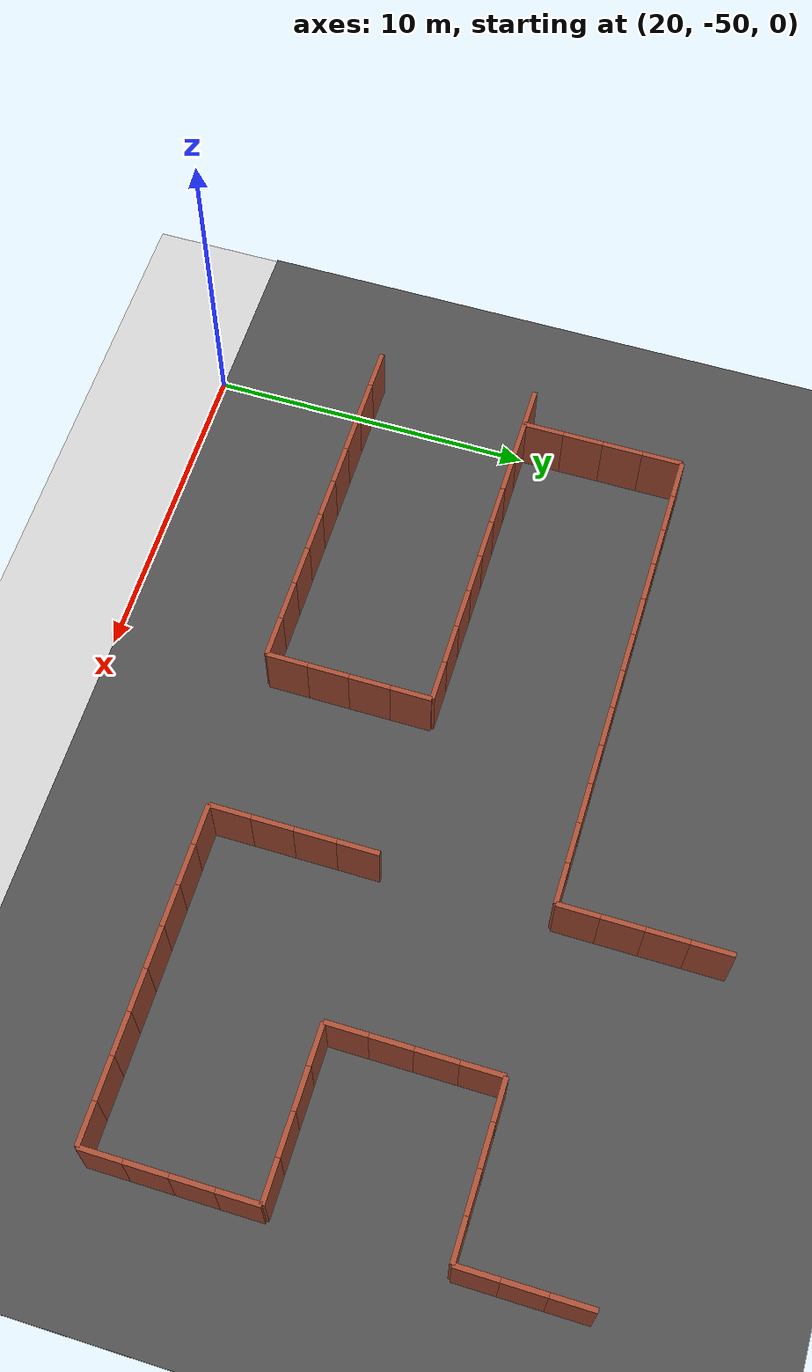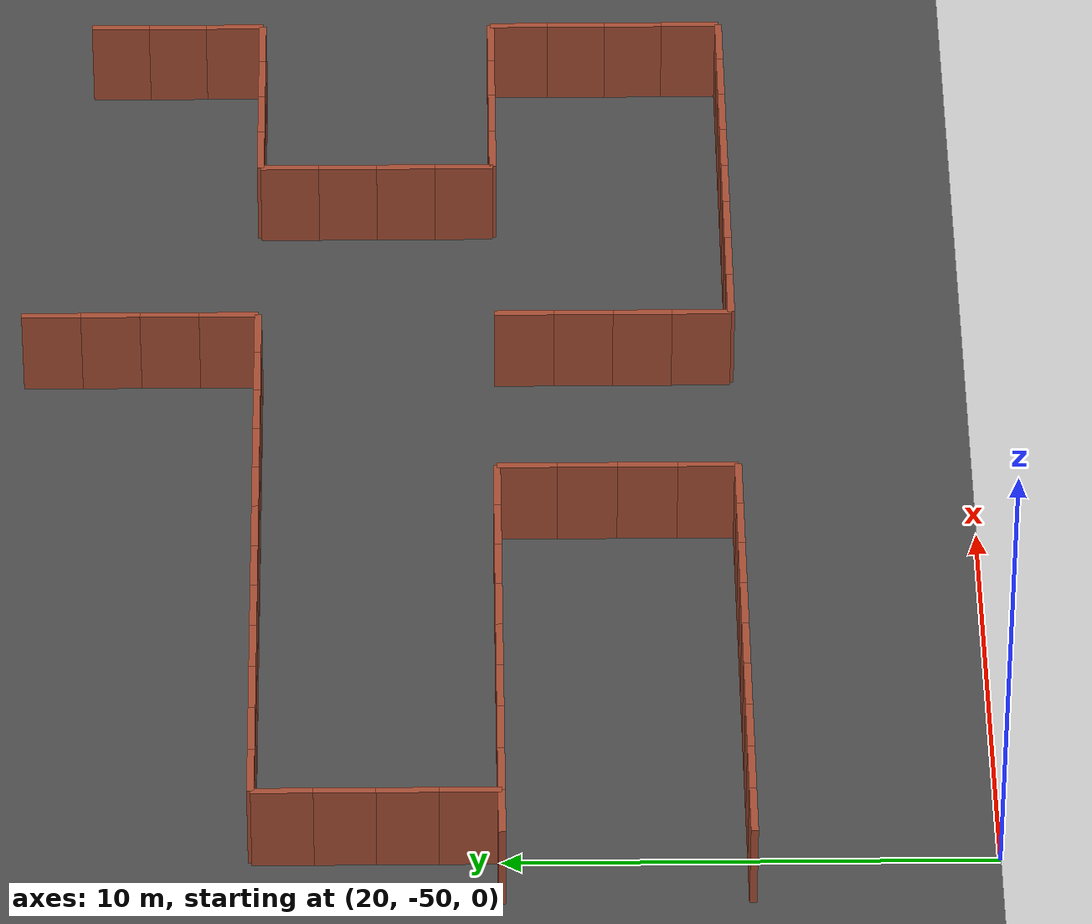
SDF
<sdf version="1.6">
 <world name="default">
  <model name="ground_plane">
   <static>1</static>
   <link name="link">
    <collision name="collision">
     <geometry><plane><normal>0 0 1</normal><size>100 100</size></plane></geometry>
     <surface><friction><ode><mu>100</mu><mu2>50</mu2></ode></friction></surface>
    </collision>
    <visual name="visual">
     <cast_shadows>0</cast_shadows>
     <geometry><plane><normal>0 0 1</normal><size>100 100</size></plane></geometry>
     <material>
      <script><uri>file://media/materials/scripts/gazebo.material</uri><name>Gazebo/Grey</name></script>
     </material>
    </visual>
   </link>
  </model>
  <model name="asphalt_plane">
   <static>1</static>
   <link name="link">
    <collision name="collision"><geometry><box><size>100 100 0.1</size></box></geometry></collision>
    <visual name="visual">
     <cast_shadows>0</cast_shadows>
     <geometry><box><size>100 100 0.1</size></box></geometry>
     <material>
      <script>
       <uri>model://asphalt_plane/materials/scripts</uri>
       <uri>model://asphalt_plane/materials/textures</uri>
       <name>vrc/asphalt</name>
      </script>
     </material>
    </visual>
   </link>
  </model>
  <model name="brick_wall_28_2_vertical1">
   <pose>20.625 -45 0 0 -0 0</pose>
   <link name="Wall_0">
    <collision name="Wall_0_Collision">
     <geometry><box><size>1.25 0.15 2</size></box></geometry>
     <pose>0 0 1 0 -0 0</pose>
    </collision>
    <visual name="Wall_0_Visual">
     <pose>0 0 1 0 -0 0</pose>
     <geometry><box><size>1.25 0.15 2</size></box></geometry>
     <material>
      <script><uri>file://media/materials/scripts/gazebo.material</uri><name>Gazebo/Bricks</name></script>
      <ambient>1 1 1 1</ambient>
     </material>
     <meta><layer>0</layer></meta>
    </visual>
   </link>
   <static>1</static>
  </model>
  <model name="brick_wall_28_2_vertical2">
   <pose>19.375 -45 0 0 -0 0</pose>
   <link name="Wall_0">
    <collision name="Wall_0_Collision">
     <geometry><box><size>1.25 0.15 2</size></box></geometry>
     <pose>0 0 1 0 -0 0</pose>
    </collision>
    <visual name="Wall_0_Visual">
     <pose>0 0 1 0 -0 0</pose>
     <geometry><box><size>1.25 0.15 2</size></box></geometry>
     <material>
      <script><uri>file://media/materials/scripts/gazebo.material</uri><name>Gazebo/Bricks</name></script>
      <ambient>1 1 1 1</ambient>
     </material>
     <meta><layer>0</layer></meta>
    </visual>
   </link>
   <static>1</static>
  </model>
  <model name="brick_wall_28_4_vertical1">
   <pose>20.625 -40 0 0 -0 0</pose>
   <link name="Wall_0">
    <collision name="Wall_0_Collision">
     <geometry><box><size>1.25 0.15 2</size></box></geometry>
     <pose>0 0 1 0 -0 0</pose>
    </collision>
    <visual name="Wall_0_Visual">
     <pose>0 0 1 0 -0 0</pose>
     <geometry><box><size>1.25 0.15 2</size></box></geometry>
     <material>
      <script><uri>file://media/materials/scripts/gazebo.material</uri><name>Gazebo/Bricks</name></script>
      <ambient>1 1 1 1</ambient>
     </material>
     <meta><layer>0</layer></meta>
    </visual>
   </link>
   <static>1</static>
  </model>
  <model name="brick_wall_28_4_vertical2">
   <pose>19.375 -40 0 0 -0 0</pose>
   <link name="Wall_0">
    <collision name="Wall_0_Collision">
     <geometry><box><size>1.25 0.15 2</size></box></geometry>
     <pose>0 0 1 0 -0 0</pose>
    </collision>
    <visual name="Wall_0_Visual">
     <pose>0 0 1 0 -0 0</pose>
     <geometry><box><size>1.25 0.15 2</size></box></geometry>
     <material>
      <script><uri>file://media/materials/scripts/gazebo.material</uri><name>Gazebo/Bricks</name></script>
      <ambient>1 1 1 1</ambient>
     </material>
     <meta><layer>0</layer></meta>
    </visual>
   </link>
   <static>1</static>
  </model>
  <model name="brick_wall_28_4_horizontal1">
   <pose>20 -39.375 0 0 -0 1.5708</pose>
   <link name="Wall_0">
    <collision name="Wall_0_Collision">
     <geometry><box><size>1.25 0.15 2</size></box></geometry>
     <pose>0 0 1 0 -0 0</pose>
    </collision>
    <visual name="Wall_0_Visual">
     <pose>0 0 1 0 -0 0</pose>
     <geometry><box><size>1.25 0.15 2</size></box></geometry>
     <material>
      <script><uri>file://media/materials/scripts/gazebo.material</uri><name>Gazebo/Bricks</name></script>
      <ambient>1 1 1 1</ambient>
     </material>
     <meta><layer>0</layer></meta>
    </visual>
   </link>
   <static>1</static>
  </model>
  <model name="brick_wall_28_5_horizontal1">
   <pose>20 -36.875 0 0 -0 1.5708</pose>
   <link name="Wall_0">
    <collision name="Wall_0_Collision">
     <geometry><box><size>1.25 0.15 2</size></box></geometry>
     <pose>0 0 1 0 -0 0</pose>
    </collision>
    <visual name="Wall_0_Visual">
     <pose>0 0 1 0 -0 0</pose>
     <geometry><box><size>1.25 0.15 2</size></box></geometry>
     <material>
      <script><uri>file://media/materials/scripts/gazebo.material</uri><name>Gazebo/Bricks</name></script>
      <ambient>1 1 1 1</ambient>
     </material>
     <meta><layer>0</layer></meta>
    </visual>
   </link>
   <static>1</static>
  </model>
  <model name="brick_wall_28_5_horizontal2">
   <pose>20 -38.125 0 0 -0 1.5708</pose>
   <link name="Wall_0">
    <collision name="Wall_0_Collision">
     <geometry><box><size>1.25 0.15 2</size></box></geometry>
     <pose>0 0 1 0 -0 0</pose>
    </collision>
    <visual name="Wall_0_Visual">
     <pose>0 0 1 0 -0 0</pose>
     <geometry><box><size>1.25 0.15 2</size></box></geometry>
     <material>
      <script><uri>file://media/materials/scripts/gazebo.material</uri><name>Gazebo/Bricks</name></script>
      <ambient>1 1 1 1</ambient>
     </material>
     <meta><layer>0</layer></meta>
    </visual>
   </link>
   <static>1</static>
  </model>
  <model name="brick_wall_28_6_vertical1">
   <pose>20.625 -35 0 0 -0 0</pose>
   <link name="Wall_0">
    <collision name="Wall_0_Collision">
     <geometry><box><size>1.25 0.15 2</size></box></geometry>
     <pose>0 0 1 0 -0 0</pose>
    </collision>
    <visual name="Wall_0_Visual">
     <pose>0 0 1 0 -0 0</pose>
     <geometry><box><size>1.25 0.15 2</size></box></geometry>
     <material>
      <script><uri>file://media/materials/scripts/gazebo.material</uri><name>Gazebo/Bricks</name></script>
      <ambient>1 1 1 1</ambient>
     </material>
     <meta><layer>0</layer></meta>
    </visual>
   </link>
   <static>1</static>
  </model>
  <model name="brick_wall_28_6_horizontal2">
   <pose>20 -35.625 0 0 -0 1.5708</pose>
   <link name="Wall_0">
    <collision name="Wall_0_Collision">
     <geometry><box><size>1.25 0.15 2</size></box></geometry>
     <pose>0 0 1 0 -0 0</pose>
    </collision>
    <visual name="Wall_0_Visual">
     <pose>0 0 1 0 -0 0</pose>
     <geometry><box><size>1.25 0.15 2</size></box></geometry>
     <material>
      <script><uri>file://media/materials/scripts/gazebo.material</uri><name>Gazebo/Bricks</name></script>
      <ambient>1 1 1 1</ambient>
     </material>
     <meta><layer>0</layer></meta>
    </visual>
   </link>
   <static>1</static>
  </model>
  <model name="brick_wall_29_2_vertical1">
   <pose>23.125 -45 0 0 -0 0</pose>
   <link name="Wall_0">
    <collision name="Wall_0_Collision">
     <geometry><box><size>1.25 0.15 2</size></box></geometry>
     <pose>0 0 1 0 -0 0</pose>
    </collision>
    <visual name="Wall_0_Visual">
     <pose>0 0 1 0 -0 0</pose>
     <geometry><box><size>1.25 0.15 2</size></box></geometry>
     <material>
      <script><uri>file://media/materials/scripts/gazebo.material</uri><name>Gazebo/Bricks</name></script>
      <ambient>1 1 1 1</ambient>
     </material>
     <meta><layer>0</layer></meta>
    </visual>
   </link>
   <static>1</static>
  </model>
  <model name="brick_wall_29_2_vertical2">
   <pose>21.875 -45 0 0 -0 0</pose>
   <link name="Wall_0">
    <collision name="Wall_0_Collision">
     <geometry><box><size>1.25 0.15 2</size></box></geometry>
     <pose>0 0 1 0 -0 0</pose>
    </collision>
    <visual name="Wall_0_Visual">
     <pose>0 0 1 0 -0 0</pose>
     <geometry><box><size>1.25 0.15 2</size></box></geometry>
     <material>
      <script><uri>file://media/materials/scripts/gazebo.material</uri><name>Gazebo/Bricks</name></script>
      <ambient>1 1 1 1</ambient>
     </material>
     <meta><layer>0</layer></meta>
    </visual>
   </link>
   <static>1</static>
  </model>
  <model name="brick_wall_29_4_vertical1">
   <pose>23.125 -40 0 0 -0 0</pose>
   <link name="Wall_0">
    <collision name="Wall_0_Collision">
     <geometry><box><size>1.25 0.15 2</size></box></geometry>
     <pose>0 0 1 0 -0 0</pose>
    </collision>
    <visual name="Wall_0_Visual">
     <pose>0 0 1 0 -0 0</pose>
     <geometry><box><size>1.25 0.15 2</size></box></geometry>
     <material>
      <script><uri>file://media/materials/scripts/gazebo.material</uri><name>Gazebo/Bricks</name></script>
      <ambient>1 1 1 1</ambient>
     </material>
     <meta><layer>0</layer></meta>
    </visual>
   </link>
   <static>1</static>
  </model>
  <model name="brick_wall_29_4_vertical2">
   <pose>21.875 -40 0 0 -0 0</pose>
   <link name="Wall_0">
    <collision name="Wall_0_Collision">
     <geometry><box><size>1.25 0.15 2</size></box></geometry>
     <pose>0 0 1 0 -0 0</pose>
    </collision>
    <visual name="Wall_0_Visual">
     <pose>0 0 1 0 -0 0</pose>
     <geometry><box><size>1.25 0.15 2</size></box></geometry>
     <material>
      <script><uri>file://media/materials/scripts/gazebo.material</uri><name>Gazebo/Bricks</name></script>
      <ambient>1 1 1 1</ambient>
     </material>
     <meta><layer>0</layer></meta>
    </visual>
   </link>
   <static>1</static>
  </model>
  <model name="brick_wall_29_6_vertical1">
   <pose>23.125 -35 0 0 -0 0</pose>
   <link name="Wall_0">
    <collision name="Wall_0_Collision">
     <geometry><box><size>1.25 0.15 2</size></box></geometry>
     <pose>0 0 1 0 -0 0</pose>
    </collision>
    <visual name="Wall_0_Visual">
     <pose>0 0 1 0 -0 0</pose>
     <geometry><box><size>1.25 0.15 2</size></box></geometry>
     <material>
      <script><uri>file://media/materials/scripts/gazebo.material</uri><name>Gazebo/Bricks</name></script>
      <ambient>1 1 1 1</ambient>
     </material>
     <meta><layer>0</layer></meta>
    </visual>
   </link>
   <static>1</static>
  </model>
  <model name="brick_wall_29_6_vertical2">
   <pose>21.875 -35 0 0 -0 0</pose>
   <link name="Wall_0">
    <collision name="Wall_0_Collision">
     <geometry><box><size>1.25 0.15 2</size></box></geometry>
     <pose>0 0 1 0 -0 0</pose>
    </collision>
    <visual name="Wall_0_Visual">
     <pose>0 0 1 0 -0 0</pose>
     <geometry><box><size>1.25 0.15 2</size></box></geometry>
     <material>
      <script><uri>file://media/materials/scripts/gazebo.material</uri><name>Gazebo/Bricks</name></script>
      <ambient>1 1 1 1</ambient>
     </material>
     <meta><layer>0</layer></meta>
    </visual>
   </link>
   <static>1</static>
  </model>
  <model name="brick_wall_30_2_vertical1">
   <pose>25.625 -45 0 0 -0 0</pose>
   <link name="Wall_0">
    <collision name="Wall_0_Collision">
     <geometry><box><size>1.25 0.15 2</size></box></geometry>
     <pose>0 0 1 0 -0 0</pose>
    </collision>
    <visual name="Wall_0_Visual">
     <pose>0 0 1 0 -0 0</pose>
     <geometry><box><size>1.25 0.15 2</size></box></geometry>
     <material>
      <script><uri>file://media/materials/scripts/gazebo.material</uri><name>Gazebo/Bricks</name></script>
      <ambient>1 1 1 1</ambient>
     </material>
     <meta><layer>0</layer></meta>
    </visual>
   </link>
   <static>1</static>
  </model>
  <model name="brick_wall_30_2_vertical2">
   <pose>24.375 -45 0 0 -0 0</pose>
   <link name="Wall_0">
    <collision name="Wall_0_Collision">
     <geometry><box><size>1.25 0.15 2</size></box></geometry>
     <pose>0 0 1 0 -0 0</pose>
    </collision>
    <visual name="Wall_0_Visual">
     <pose>0 0 1 0 -0 0</pose>
     <geometry><box><size>1.25 0.15 2</size></box></geometry>
     <material>
      <script><uri>file://media/materials/scripts/gazebo.material</uri><name>Gazebo/Bricks</name></script>
      <ambient>1 1 1 1</ambient>
     </material>
     <meta><layer>0</layer></meta>
    </visual>
   </link>
   <static>1</static>
  </model>
  <model name="brick_wall_30_4_vertical1">
   <pose>25.625 -40 0 0 -0 0</pose>
   <link name="Wall_0">
    <collision name="Wall_0_Collision">
     <geometry><box><size>1.25 0.15 2</size></box></geometry>
     <pose>0 0 1 0 -0 0</pose>
    </collision>
    <visual name="Wall_0_Visual">
     <pose>0 0 1 0 -0 0</pose>
     <geometry><box><size>1.25 0.15 2</size></box></geometry>
     <material>
      <script><uri>file://media/materials/scripts/gazebo.material</uri><name>Gazebo/Bricks</name></script>
      <ambient>1 1 1 1</ambient>
     </material>
     <meta><layer>0</layer></meta>
    </visual>
   </link>
   <static>1</static>
  </model>
  <model name="brick_wall_30_4_vertical2">
   <pose>24.375 -40 0 0 -0 0</pose>
   <link name="Wall_0">
    <collision name="Wall_0_Collision">
     <geometry><box><size>1.25 0.15 2</size></box></geometry>
     <pose>0 0 1 0 -0 0</pose>
    </collision>
    <visual name="Wall_0_Visual">
     <pose>0 0 1 0 -0 0</pose>
     <geometry><box><size>1.25 0.15 2</size></box></geometry>
     <material>
      <script><uri>file://media/materials/scripts/gazebo.material</uri><name>Gazebo/Bricks</name></script>
      <ambient>1 1 1 1</ambient>
     </material>
     <meta><layer>0</layer></meta>
    </visual>
   </link>
   <static>1</static>
  </model>
  <model name="brick_wall_30_6_vertical1">
   <pose>25.625 -35 0 0 -0 0</pose>
   <link name="Wall_0">
    <collision name="Wall_0_Collision">
     <geometry><box><size>1.25 0.15 2</size></box></geometry>
     <pose>0 0 1 0 -0 0</pose>
    </collision>
    <visual name="Wall_0_Visual">
     <pose>0 0 1 0 -0 0</pose>
     <geometry><box><size>1.25 0.15 2</size></box></geometry>
     <material>
      <script><uri>file://media/materials/scripts/gazebo.material</uri><name>Gazebo/Bricks</name></script>
      <ambient>1 1 1 1</ambient>
     </material>
     <meta><layer>0</layer></meta>
    </visual>
   </link>
   <static>1</static>
  </model>
  <model name="brick_wall_30_6_vertical2">
   <pose>24.375 -35 0 0 -0 0</pose>
   <link name="Wall_0">
    <collision name="Wall_0_Collision">
     <geometry><box><size>1.25 0.15 2</size></box></geometry>
     <pose>0 0 1 0 -0 0</pose>
    </collision>
    <visual name="Wall_0_Visual">
     <pose>0 0 1 0 -0 0</pose>
     <geometry><box><size>1.25 0.15 2</size></box></geometry>
     <material>
      <script><uri>file://media/materials/scripts/gazebo.material</uri><name>Gazebo/Bricks</name></script>
      <ambient>1 1 1 1</ambient>
     </material>
     <meta><layer>0</layer></meta>
    </visual>
   </link>
   <static>1</static>
  </model>
  <model name="brick_wall_31_2_vertical1">
   <pose>28.125 -45 0 0 -0 0</pose>
   <link name="Wall_0">
    <collision name="Wall_0_Collision">
     <geometry><box><size>1.25 0.15 2</size></box></geometry>
     <pose>0 0 1 0 -0 0</pose>
    </collision>
    <visual name="Wall_0_Visual">
     <pose>0 0 1 0 -0 0</pose>
     <geometry><box><size>1.25 0.15 2</size></box></geometry>
     <material>
      <script><uri>file://media/materials/scripts/gazebo.material</uri><name>Gazebo/Bricks</name></script>
      <ambient>1 1 1 1</ambient>
     </material>
     <meta><layer>0</layer></meta>
    </visual>
   </link>
   <static>1</static>
  </model>
  <model name="brick_wall_31_2_vertical2">
   <pose>26.875 -45 0 0 -0 0</pose>
   <link name="Wall_0">
    <collision name="Wall_0_Collision">
     <geometry><box><size>1.25 0.15 2</size></box></geometry>
     <pose>0 0 1 0 -0 0</pose>
    </collision>
    <visual name="Wall_0_Visual">
     <pose>0 0 1 0 -0 0</pose>
     <geometry><box><size>1.25 0.15 2</size></box></geometry>
     <material>
      <script><uri>file://media/materials/scripts/gazebo.material</uri><name>Gazebo/Bricks</name></script>
      <ambient>1 1 1 1</ambient>
     </material>
     <meta><layer>0</layer></meta>
    </visual>
   </link>
   <static>1</static>
  </model>
  <model name="brick_wall_31_4_vertical1">
   <pose>28.125 -40 0 0 -0 0</pose>
   <link name="Wall_0">
    <collision name="Wall_0_Collision">
     <geometry><box><size>1.25 0.15 2</size></box></geometry>
     <pose>0 0 1 0 -0 0</pose>
    </collision>
    <visual name="Wall_0_Visual">
     <pose>0 0 1 0 -0 0</pose>
     <geometry><box><size>1.25 0.15 2</size></box></geometry>
     <material>
      <script><uri>file://media/materials/scripts/gazebo.material</uri><name>Gazebo/Bricks</name></script>
      <ambient>1 1 1 1</ambient>
     </material>
     <meta><layer>0</layer></meta>
    </visual>
   </link>
   <static>1</static>
  </model>
  <model name="brick_wall_31_4_vertical2">
   <pose>26.875 -40 0 0 -0 0</pose>
   <link name="Wall_0">
    <collision name="Wall_0_Collision">
     <geometry><box><size>1.25 0.15 2</size></box></geometry>
     <pose>0 0 1 0 -0 0</pose>
    </collision>
    <visual name="Wall_0_Visual">
     <pose>0 0 1 0 -0 0</pose>
     <geometry><box><size>1.25 0.15 2</size></box></geometry>
     <material>
      <script><uri>file://media/materials/scripts/gazebo.material</uri><name>Gazebo/Bricks</name></script>
      <ambient>1 1 1 1</ambient>
     </material>
     <meta><layer>0</layer></meta>
    </visual>
   </link>
   <static>1</static>
  </model>
  <model name="brick_wall_31_6_vertical1">
   <pose>28.125 -35 0 0 -0 0</pose>
   <link name="Wall_0">
    <collision name="Wall_0_Collision">
     <geometry><box><size>1.25 0.15 2</size></box></geometry>
     <pose>0 0 1 0 -0 0</pose>
    </collision>
    <visual name="Wall_0_Visual">
     <pose>0 0 1 0 -0 0</pose>
     <geometry><box><size>1.25 0.15 2</size></box></geometry>
     <material>
      <script><uri>file://media/materials/scripts/gazebo.material</uri><name>Gazebo/Bricks</name></script>
      <ambient>1 1 1 1</ambient>
     </material>
     <meta><layer>0</layer></meta>
    </visual>
   </link>
   <static>1</static>
  </model>
  <model name="brick_wall_31_6_vertical2">
   <pose>26.875 -35 0 0 -0 0</pose>
   <link name="Wall_0">
    <collision name="Wall_0_Collision">
     <geometry><box><size>1.25 0.15 2</size></box></geometry>
     <pose>0 0 1 0 -0 0</pose>
    </collision>
    <visual name="Wall_0_Visual">
     <pose>0 0 1 0 -0 0</pose>
     <geometry><box><size>1.25 0.15 2</size></box></geometry>
     <material>
      <script><uri>file://media/materials/scripts/gazebo.material</uri><name>Gazebo/Bricks</name></script>
      <ambient>1 1 1 1</ambient>
     </material>
     <meta><layer>0</layer></meta>
    </visual>
   </link>
   <static>1</static>
  </model>
  <model name="brick_wall_32_2_vertical2">
   <pose>29.375 -45 0 0 -0 0</pose>
   <link name="Wall_0">
    <collision name="Wall_0_Collision">
     <geometry><box><size>1.25 0.15 2</size></box></geometry>
     <pose>0 0 1 0 -0 0</pose>
    </collision>
    <visual name="Wall_0_Visual">
     <pose>0 0 1 0 -0 0</pose>
     <geometry><box><size>1.25 0.15 2</size></box></geometry>
     <material>
      <script><uri>file://media/materials/scripts/gazebo.material</uri><name>Gazebo/Bricks</name></script>
      <ambient>1 1 1 1</ambient>
     </material>
     <meta><layer>0</layer></meta>
    </visual>
   </link>
   <static>1</static>
  </model>
  <model name="brick_wall_32_2_horizontal1">
   <pose>30 -44.375 0 0 -0 1.5708</pose>
   <link name="Wall_0">
    <collision name="Wall_0_Collision">
     <geometry><box><size>1.25 0.15 2</size></box></geometry>
     <pose>0 0 1 0 -0 0</pose>
    </collision>
    <visual name="Wall_0_Visual">
     <pose>0 0 1 0 -0 0</pose>
     <geometry><box><size>1.25 0.15 2</size></box></geometry>
     <material>
      <script><uri>file://media/materials/scripts/gazebo.material</uri><name>Gazebo/Bricks</name></script>
      <ambient>1 1 1 1</ambient>
     </material>
     <meta><layer>0</layer></meta>
    </visual>
   </link>
   <static>1</static>
  </model>
  <model name="brick_wall_32_3_horizontal1">
   <pose>30 -41.875 0 0 -0 1.5708</pose>
   <link name="Wall_0">
    <collision name="Wall_0_Collision">
     <geometry><box><size>1.25 0.15 2</size></box></geometry>
     <pose>0 0 1 0 -0 0</pose>
    </collision>
    <visual name="Wall_0_Visual">
     <pose>0 0 1 0 -0 0</pose>
     <geometry><box><size>1.25 0.15 2</size></box></geometry>
     <material>
      <script><uri>file://media/materials/scripts/gazebo.material</uri><name>Gazebo/Bricks</name></script>
      <ambient>1 1 1 1</ambient>
     </material>
     <meta><layer>0</layer></meta>
    </visual>
   </link>
   <static>1</static>
  </model>
  <model name="brick_wall_32_3_horizontal2">
   <pose>30 -43.125 0 0 -0 1.5708</pose>
   <link name="Wall_0">
    <collision name="Wall_0_Collision">
     <geometry><box><size>1.25 0.15 2</size></box></geometry>
     <pose>0 0 1 0 -0 0</pose>
    </collision>
    <visual name="Wall_0_Visual">
     <pose>0 0 1 0 -0 0</pose>
     <geometry><box><size>1.25 0.15 2</size></box></geometry>
     <material>
      <script><uri>file://media/materials/scripts/gazebo.material</uri><name>Gazebo/Bricks</name></script>
      <ambient>1 1 1 1</ambient>
     </material>
     <meta><layer>0</layer></meta>
    </visual>
   </link>
   <static>1</static>
  </model>
  <model name="brick_wall_32_4_vertical2">
   <pose>29.375 -40 0 0 -0 0</pose>
   <link name="Wall_0">
    <collision name="Wall_0_Collision">
     <geometry><box><size>1.25 0.15 2</size></box></geometry>
     <pose>0 0 1 0 -0 0</pose>
    </collision>
    <visual name="Wall_0_Visual">
     <pose>0 0 1 0 -0 0</pose>
     <geometry><box><size>1.25 0.15 2</size></box></geometry>
     <material>
      <script><uri>file://media/materials/scripts/gazebo.material</uri><name>Gazebo/Bricks</name></script>
      <ambient>1 1 1 1</ambient>
     </material>
     <meta><layer>0</layer></meta>
    </visual>
   </link>
   <static>1</static>
  </model>
  <model name="brick_wall_32_4_horizontal2">
   <pose>30 -40.625 0 0 -0 1.5708</pose>
   <link name="Wall_0">
    <collision name="Wall_0_Collision">
     <geometry><box><size>1.25 0.15 2</size></box></geometry>
     <pose>0 0 1 0 -0 0</pose>
    </collision>
    <visual name="Wall_0_Visual">
     <pose>0 0 1 0 -0 0</pose>
     <geometry><box><size>1.25 0.15 2</size></box></geometry>
     <material>
      <script><uri>file://media/materials/scripts/gazebo.material</uri><name>Gazebo/Bricks</name></script>
      <ambient>1 1 1 1</ambient>
     </material>
     <meta><layer>0</layer></meta>
    </visual>
   </link>
   <static>1</static>
  </model>
  <model name="brick_wall_32_6_vertical1">
   <pose>30.625 -35 0 0 -0 0</pose>
   <link name="Wall_0">
    <collision name="Wall_0_Collision">
     <geometry><box><size>1.25 0.15 2</size></box></geometry>
     <pose>0 0 1 0 -0 0</pose>
    </collision>
    <visual name="Wall_0_Visual">
     <pose>0 0 1 0 -0 0</pose>
     <geometry><box><size>1.25 0.15 2</size></box></geometry>
     <material>
      <script><uri>file://media/materials/scripts/gazebo.material</uri><name>Gazebo/Bricks</name></script>
      <ambient>1 1 1 1</ambient>
     </material>
     <meta><layer>0</layer></meta>
    </visual>
   </link>
   <static>1</static>
  </model>
  <model name="brick_wall_32_6_vertical2">
   <pose>29.375 -35 0 0 -0 0</pose>
   <link name="Wall_0">
    <collision name="Wall_0_Collision">
     <geometry><box><size>1.25 0.15 2</size></box></geometry>
     <pose>0 0 1 0 -0 0</pose>
    </collision>
    <visual name="Wall_0_Visual">
     <pose>0 0 1 0 -0 0</pose>
     <geometry><box><size>1.25 0.15 2</size></box></geometry>
     <material>
      <script><uri>file://media/materials/scripts/gazebo.material</uri><name>Gazebo/Bricks</name></script>
      <ambient>1 1 1 1</ambient>
     </material>
     <meta><layer>0</layer></meta>
    </visual>
   </link>
   <static>1</static>
  </model>
  <model name="brick_wall_33_6_vertical1">
   <pose>33.125 -35 0 0 -0 0</pose>
   <link name="Wall_0">
    <collision name="Wall_0_Collision">
     <geometry><box><size>1.25 0.15 2</size></box></geometry>
     <pose>0 0 1 0 -0 0</pose>
    </collision>
    <visual name="Wall_0_Visual">
     <pose>0 0 1 0 -0 0</pose>
     <geometry><box><size>1.25 0.15 2</size></box></geometry>
     <material>
      <script><uri>file://media/materials/scripts/gazebo.material</uri><name>Gazebo/Bricks</name></script>
      <ambient>1 1 1 1</ambient>
     </material>
     <meta><layer>0</layer></meta>
    </visual>
   </link>
   <static>1</static>
  </model>
  <model name="brick_wall_33_6_vertical2">
   <pose>31.875 -35 0 0 -0 0</pose>
   <link name="Wall_0">
    <collision name="Wall_0_Collision">
     <geometry><box><size>1.25 0.15 2</size></box></geometry>
     <pose>0 0 1 0 -0 0</pose>
    </collision>
    <visual name="Wall_0_Visual">
     <pose>0 0 1 0 -0 0</pose>
     <geometry><box><size>1.25 0.15 2</size></box></geometry>
     <material>
      <script><uri>file://media/materials/scripts/gazebo.material</uri><name>Gazebo/Bricks</name></script>
      <ambient>1 1 1 1</ambient>
     </material>
     <meta><layer>0</layer></meta>
    </visual>
   </link>
   <static>1</static>
  </model>
  <model name="brick_wall_34_2_vertical1">
   <pose>35.625 -45 0 0 -0 0</pose>
   <link name="Wall_0">
    <collision name="Wall_0_Collision">
     <geometry><box><size>1.25 0.15 2</size></box></geometry>
     <pose>0 0 1 0 -0 0</pose>
    </collision>
    <visual name="Wall_0_Visual">
     <pose>0 0 1 0 -0 0</pose>
     <geometry><box><size>1.25 0.15 2</size></box></geometry>
     <material>
      <script><uri>file://media/materials/scripts/gazebo.material</uri><name>Gazebo/Bricks</name></script>
      <ambient>1 1 1 1</ambient>
     </material>
     <meta><layer>0</layer></meta>
    </visual>
   </link>
   <static>1</static>
  </model>
  <model name="brick_wall_34_2_horizontal1">
   <pose>35 -44.375 0 0 -0 1.5708</pose>
   <link name="Wall_0">
    <collision name="Wall_0_Collision">
     <geometry><box><size>1.25 0.15 2</size></box></geometry>
     <pose>0 0 1 0 -0 0</pose>
    </collision>
    <visual name="Wall_0_Visual">
     <pose>0 0 1 0 -0 0</pose>
     <geometry><box><size>1.25 0.15 2</size></box></geometry>
     <material>
      <script><uri>file://media/materials/scripts/gazebo.material</uri><name>Gazebo/Bricks</name></script>
      <ambient>1 1 1 1</ambient>
     </material>
     <meta><layer>0</layer></meta>
    </visual>
   </link>
   <static>1</static>
  </model>
  <model name="brick_wall_34_3_horizontal1">
   <pose>35 -41.875 0 0 -0 1.5708</pose>
   <link name="Wall_0">
    <collision name="Wall_0_Collision">
     <geometry><box><size>1.25 0.15 2</size></box></geometry>
     <pose>0 0 1 0 -0 0</pose>
    </collision>
    <visual name="Wall_0_Visual">
     <pose>0 0 1 0 -0 0</pose>
     <geometry><box><size>1.25 0.15 2</size></box></geometry>
     <material>
      <script><uri>file://media/materials/scripts/gazebo.material</uri><name>Gazebo/Bricks</name></script>
      <ambient>1 1 1 1</ambient>
     </material>
     <meta><layer>0</layer></meta>
    </visual>
   </link>
   <static>1</static>
  </model>
  <model name="brick_wall_34_3_horizontal2">
   <pose>35 -43.125 0 0 -0 1.5708</pose>
   <link name="Wall_0">
    <collision name="Wall_0_Collision">
     <geometry><box><size>1.25 0.15 2</size></box></geometry>
     <pose>0 0 1 0 -0 0</pose>
    </collision>
    <visual name="Wall_0_Visual">
     <pose>0 0 1 0 -0 0</pose>
     <geometry><box><size>1.25 0.15 2</size></box></geometry>
     <material>
      <script><uri>file://media/materials/scripts/gazebo.material</uri><name>Gazebo/Bricks</name></script>
      <ambient>1 1 1 1</ambient>
     </material>
     <meta><layer>0</layer></meta>
    </visual>
   </link>
   <static>1</static>
  </model>
  <model name="brick_wall_34_4_horizontal2">
   <pose>35 -40.625 0 0 -0 1.5708</pose>
   <link name="Wall_0">
    <collision name="Wall_0_Collision">
     <geometry><box><size>1.25 0.15 2</size></box></geometry>
     <pose>0 0 1 0 -0 0</pose>
    </collision>
    <visual name="Wall_0_Visual">
     <pose>0 0 1 0 -0 0</pose>
     <geometry><box><size>1.25 0.15 2</size></box></geometry>
     <material>
      <script><uri>file://media/materials/scripts/gazebo.material</uri><name>Gazebo/Bricks</name></script>
      <ambient>1 1 1 1</ambient>
     </material>
     <meta><layer>0</layer></meta>
    </visual>
   </link>
   <static>1</static>
  </model>
  <model name="brick_wall_34_6_vertical2">
   <pose>34.375 -35 0 0 -0 0</pose>
   <link name="Wall_0">
    <collision name="Wall_0_Collision">
     <geometry><box><size>1.25 0.15 2</size></box></geometry>
     <pose>0 0 1 0 -0 0</pose>
    </collision>
    <visual name="Wall_0_Visual">
     <pose>0 0 1 0 -0 0</pose>
     <geometry><box><size>1.25 0.15 2</size></box></geometry>
     <material>
      <script><uri>file://media/materials/scripts/gazebo.material</uri><name>Gazebo/Bricks</name></script>
      <ambient>1 1 1 1</ambient>
     </material>
     <meta><layer>0</layer></meta>
    </visual>
   </link>
   <static>1</static>
  </model>
  <model name="brick_wall_34_6_horizontal1">
   <pose>35 -34.375 0 0 -0 1.5708</pose>
   <link name="Wall_0">
    <collision name="Wall_0_Collision">
     <geometry><box><size>1.25 0.15 2</size></box></geometry>
     <pose>0 0 1 0 -0 0</pose>
    </collision>
    <visual name="Wall_0_Visual">
     <pose>0 0 1 0 -0 0</pose>
     <geometry><box><size>1.25 0.15 2</size></box></geometry>
     <material>
      <script><uri>file://media/materials/scripts/gazebo.material</uri><name>Gazebo/Bricks</name></script>
      <ambient>1 1 1 1</ambient>
     </material>
     <meta><layer>0</layer></meta>
    </visual>
   </link>
   <static>1</static>
  </model>
  <model name="brick_wall_34_7_horizontal1">
   <pose>35 -31.875 0 0 -0 1.5708</pose>
   <link name="Wall_0">
    <collision name="Wall_0_Collision">
     <geometry><box><size>1.25 0.15 2</size></box></geometry>
     <pose>0 0 1 0 -0 0</pose>
    </collision>
    <visual name="Wall_0_Visual">
     <pose>0 0 1 0 -0 0</pose>
     <geometry><box><size>1.25 0.15 2</size></box></geometry>
     <material>
      <script><uri>file://media/materials/scripts/gazebo.material</uri><name>Gazebo/Bricks</name></script>
      <ambient>1 1 1 1</ambient>
     </material>
     <meta><layer>0</layer></meta>
    </visual>
   </link>
   <static>1</static>
  </model>
  <model name="brick_wall_34_7_horizontal2">
   <pose>35 -33.125 0 0 -0 1.5708</pose>
   <link name="Wall_0">
    <collision name="Wall_0_Collision">
     <geometry><box><size>1.25 0.15 2</size></box></geometry>
     <pose>0 0 1 0 -0 0</pose>
    </collision>
    <visual name="Wall_0_Visual">
     <pose>0 0 1 0 -0 0</pose>
     <geometry><box><size>1.25 0.15 2</size></box></geometry>
     <material>
      <script><uri>file://media/materials/scripts/gazebo.material</uri><name>Gazebo/Bricks</name></script>
      <ambient>1 1 1 1</ambient>
     </material>
     <meta><layer>0</layer></meta>
    </visual>
   </link>
   <static>1</static>
  </model>
  <model name="brick_wall_34_8_horizontal2">
   <pose>35 -30.625 0 0 -0 1.5708</pose>
   <link name="Wall_0">
    <collision name="Wall_0_Collision">
     <geometry><box><size>1.25 0.15 2</size></box></geometry>
     <pose>0 0 1 0 -0 0</pose>
    </collision>
    <visual name="Wall_0_Visual">
     <pose>0 0 1 0 -0 0</pose>
     <geometry><box><size>1.25 0.15 2</size></box></geometry>
     <material>
      <script><uri>file://media/materials/scripts/gazebo.material</uri><name>Gazebo/Bricks</name></script>
      <ambient>1 1 1 1</ambient>
     </material>
     <meta><layer>0</layer></meta>
    </visual>
   </link>
   <static>1</static>
  </model>
  <model name="brick_wall_35_2_vertical1">
   <pose>38.125 -45 0 0 -0 0</pose>
   <link name="Wall_0">
    <collision name="Wall_0_Collision">
     <geometry><box><size>1.25 0.15 2</size></box></geometry>
     <pose>0 0 1 0 -0 0</pose>
    </collision>
    <visual name="Wall_0_Visual">
     <pose>0 0 1 0 -0 0</pose>
     <geometry><box><size>1.25 0.15 2</size></box></geometry>
     <material>
      <script><uri>file://media/materials/scripts/gazebo.material</uri><name>Gazebo/Bricks</name></script>
      <ambient>1 1 1 1</ambient>
     </material>
     <meta><layer>0</layer></meta>
    </visual>
   </link>
   <static>1</static>
  </model>
  <model name="brick_wall_35_2_vertical2">
   <pose>36.875 -45 0 0 -0 0</pose>
   <link name="Wall_0">
    <collision name="Wall_0_Collision">
     <geometry><box><size>1.25 0.15 2</size></box></geometry>
     <pose>0 0 1 0 -0 0</pose>
    </collision>
    <visual name="Wall_0_Visual">
     <pose>0 0 1 0 -0 0</pose>
     <geometry><box><size>1.25 0.15 2</size></box></geometry>
     <material>
      <script><uri>file://media/materials/scripts/gazebo.material</uri><name>Gazebo/Bricks</name></script>
      <ambient>1 1 1 1</ambient>
     </material>
     <meta><layer>0</layer></meta>
    </visual>
   </link>
   <static>1</static>
  </model>
  <model name="brick_wall_36_2_vertical1">
   <pose>40.625 -45 0 0 -0 0</pose>
   <link name="Wall_0">
    <collision name="Wall_0_Collision">
     <geometry><box><size>1.25 0.15 2</size></box></geometry>
     <pose>0 0 1 0 -0 0</pose>
    </collision>
    <visual name="Wall_0_Visual">
     <pose>0 0 1 0 -0 0</pose>
     <geometry><box><size>1.25 0.15 2</size></box></geometry>
     <material>
      <script><uri>file://media/materials/scripts/gazebo.material</uri><name>Gazebo/Bricks</name></script>
      <ambient>1 1 1 1</ambient>
     </material>
     <meta><layer>0</layer></meta>
    </visual>
   </link>
   <static>1</static>
  </model>
  <model name="brick_wall_36_2_vertical2">
   <pose>39.375 -45 0 0 -0 0</pose>
   <link name="Wall_0">
    <collision name="Wall_0_Collision">
     <geometry><box><size>1.25 0.15 2</size></box></geometry>
     <pose>0 0 1 0 -0 0</pose>
    </collision>
    <visual name="Wall_0_Visual">
     <pose>0 0 1 0 -0 0</pose>
     <geometry><box><size>1.25 0.15 2</size></box></geometry>
     <material>
      <script><uri>file://media/materials/scripts/gazebo.material</uri><name>Gazebo/Bricks</name></script>
      <ambient>1 1 1 1</ambient>
     </material>
     <meta><layer>0</layer></meta>
    </visual>
   </link>
   <static>1</static>
  </model>
  <model name="brick_wall_36_4_vertical1">
   <pose>40.625 -40 0 0 -0 0</pose>
   <link name="Wall_0">
    <collision name="Wall_0_Collision">
     <geometry><box><size>1.25 0.15 2</size></box></geometry>
     <pose>0 0 1 0 -0 0</pose>
    </collision>
    <visual name="Wall_0_Visual">
     <pose>0 0 1 0 -0 0</pose>
     <geometry><box><size>1.25 0.15 2</size></box></geometry>
     <material>
      <script><uri>file://media/materials/scripts/gazebo.material</uri><name>Gazebo/Bricks</name></script>
      <ambient>1 1 1 1</ambient>
     </material>
     <meta><layer>0</layer></meta>
    </visual>
   </link>
   <static>1</static>
  </model>
  <model name="brick_wall_36_4_horizontal1">
   <pose>40 -39.375 0 0 -0 1.5708</pose>
   <link name="Wall_0">
    <collision name="Wall_0_Collision">
     <geometry><box><size>1.25 0.15 2</size></box></geometry>
     <pose>0 0 1 0 -0 0</pose>
    </collision>
    <visual name="Wall_0_Visual">
     <pose>0 0 1 0 -0 0</pose>
     <geometry><box><size>1.25 0.15 2</size></box></geometry>
     <material>
      <script><uri>file://media/materials/scripts/gazebo.material</uri><name>Gazebo/Bricks</name></script>
      <ambient>1 1 1 1</ambient>
     </material>
     <meta><layer>0</layer></meta>
    </visual>
   </link>
   <static>1</static>
  </model>
  <model name="brick_wall_36_5_horizontal1">
   <pose>40 -36.875 0 0 -0 1.5708</pose>
   <link name="Wall_0">
    <collision name="Wall_0_Collision">
     <geometry><box><size>1.25 0.15 2</size></box></geometry>
     <pose>0 0 1 0 -0 0</pose>
    </collision>
    <visual name="Wall_0_Visual">
     <pose>0 0 1 0 -0 0</pose>
     <geometry><box><size>1.25 0.15 2</size></box></geometry>
     <material>
      <script><uri>file://media/materials/scripts/gazebo.material</uri><name>Gazebo/Bricks</name></script>
      <ambient>1 1 1 1</ambient>
     </material>
     <meta><layer>0</layer></meta>
    </visual>
   </link>
   <static>1</static>
  </model>
  <model name="brick_wall_36_5_horizontal2">
   <pose>40 -38.125 0 0 -0 1.5708</pose>
   <link name="Wall_0">
    <collision name="Wall_0_Collision">
     <geometry><box><size>1.25 0.15 2</size></box></geometry>
     <pose>0 0 1 0 -0 0</pose>
    </collision>
    <visual name="Wall_0_Visual">
     <pose>0 0 1 0 -0 0</pose>
     <geometry><box><size>1.25 0.15 2</size></box></geometry>
     <material>
      <script><uri>file://media/materials/scripts/gazebo.material</uri><name>Gazebo/Bricks</name></script>
      <ambient>1 1 1 1</ambient>
     </material>
     <meta><layer>0</layer></meta>
    </visual>
   </link>
   <static>1</static>
  </model>
  <model name="brick_wall_36_6_vertical1">
   <pose>40.625 -35 0 0 -0 0</pose>
   <link name="Wall_0">
    <collision name="Wall_0_Collision">
     <geometry><box><size>1.25 0.15 2</size></box></geometry>
     <pose>0 0 1 0 -0 0</pose>
    </collision>
    <visual name="Wall_0_Visual">
     <pose>0 0 1 0 -0 0</pose>
     <geometry><box><size>1.25 0.15 2</size></box></geometry>
     <material>
      <script><uri>file://media/materials/scripts/gazebo.material</uri><name>Gazebo/Bricks</name></script>
      <ambient>1 1 1 1</ambient>
     </material>
     <meta><layer>0</layer></meta>
    </visual>
   </link>
   <static>1</static>
  </model>
  <model name="brick_wall_36_6_horizontal2">
   <pose>40 -35.625 0 0 -0 1.5708</pose>
   <link name="Wall_0">
    <collision name="Wall_0_Collision">
     <geometry><box><size>1.25 0.15 2</size></box></geometry>
     <pose>0 0 1 0 -0 0</pose>
    </collision>
    <visual name="Wall_0_Visual">
     <pose>0 0 1 0 -0 0</pose>
     <geometry><box><size>1.25 0.15 2</size></box></geometry>
     <material>
      <script><uri>file://media/materials/scripts/gazebo.material</uri><name>Gazebo/Bricks</name></script>
      <ambient>1 1 1 1</ambient>
     </material>
     <meta><layer>0</layer></meta>
    </visual>
   </link>
   <static>1</static>
  </model>
  <model name="brick_wall_37_2_vertical1">
   <pose>43.125 -45 0 0 -0 0</pose>
   <link name="Wall_0">
    <collision name="Wall_0_Collision">
     <geometry><box><size>1.25 0.15 2</size></box></geometry>
     <pose>0 0 1 0 -0 0</pose>
    </collision>
    <visual name="Wall_0_Visual">
     <pose>0 0 1 0 -0 0</pose>
     <geometry><box><size>1.25 0.15 2</size></box></geometry>
     <material>
      <script><uri>file://media/materials/scripts/gazebo.material</uri><name>Gazebo/Bricks</name></script>
      <ambient>1 1 1 1</ambient>
     </material>
     <meta><layer>0</layer></meta>
    </visual>
   </link>
   <static>1</static>
  </model>
  <model name="brick_wall_37_2_vertical2">
   <pose>41.875 -45 0 0 -0 0</pose>
   <link name="Wall_0">
    <collision name="Wall_0_Collision">
     <geometry><box><size>1.25 0.15 2</size></box></geometry>
     <pose>0 0 1 0 -0 0</pose>
    </collision>
    <visual name="Wall_0_Visual">
     <pose>0 0 1 0 -0 0</pose>
     <geometry><box><size>1.25 0.15 2</size></box></geometry>
     <material>
      <script><uri>file://media/materials/scripts/gazebo.material</uri><name>Gazebo/Bricks</name></script>
      <ambient>1 1 1 1</ambient>
     </material>
     <meta><layer>0</layer></meta>
    </visual>
   </link>
   <static>1</static>
  </model>
  <model name="brick_wall_37_4_vertical1">
   <pose>43.125 -40 0 0 -0 0</pose>
   <link name="Wall_0">
    <collision name="Wall_0_Collision">
     <geometry><box><size>1.25 0.15 2</size></box></geometry>
     <pose>0 0 1 0 -0 0</pose>
    </collision>
    <visual name="Wall_0_Visual">
     <pose>0 0 1 0 -0 0</pose>
     <geometry><box><size>1.25 0.15 2</size></box></geometry>
     <material>
      <script><uri>file://media/materials/scripts/gazebo.material</uri><name>Gazebo/Bricks</name></script>
      <ambient>1 1 1 1</ambient>
     </material>
     <meta><layer>0</layer></meta>
    </visual>
   </link>
   <static>1</static>
  </model>
  <model name="brick_wall_37_4_vertical2">
   <pose>41.875 -40 0 0 -0 0</pose>
   <link name="Wall_0">
    <collision name="Wall_0_Collision">
     <geometry><box><size>1.25 0.15 2</size></box></geometry>
     <pose>0 0 1 0 -0 0</pose>
    </collision>
    <visual name="Wall_0_Visual">
     <pose>0 0 1 0 -0 0</pose>
     <geometry><box><size>1.25 0.15 2</size></box></geometry>
     <material>
      <script><uri>file://media/materials/scripts/gazebo.material</uri><name>Gazebo/Bricks</name></script>
      <ambient>1 1 1 1</ambient>
     </material>
     <meta><layer>0</layer></meta>
    </visual>
   </link>
   <static>1</static>
  </model>
  <model name="brick_wall_37_6_vertical1">
   <pose>43.125 -35 0 0 -0 0</pose>
   <link name="Wall_0">
    <collision name="Wall_0_Collision">
     <geometry><box><size>1.25 0.15 2</size></box></geometry>
     <pose>0 0 1 0 -0 0</pose>
    </collision>
    <visual name="Wall_0_Visual">
     <pose>0 0 1 0 -0 0</pose>
     <geometry><box><size>1.25 0.15 2</size></box></geometry>
     <material>
      <script><uri>file://media/materials/scripts/gazebo.material</uri><name>Gazebo/Bricks</name></script>
      <ambient>1 1 1 1</ambient>
     </material>
     <meta><layer>0</layer></meta>
    </visual>
   </link>
   <static>1</static>
  </model>
  <model name="brick_wall_37_6_vertical2">
   <pose>41.875 -35 0 0 -0 0</pose>
   <link name="Wall_0">
    <collision name="Wall_0_Collision">
     <geometry><box><size>1.25 0.15 2</size></box></geometry>
     <pose>0 0 1 0 -0 0</pose>
    </collision>
    <visual name="Wall_0_Visual">
     <pose>0 0 1 0 -0 0</pose>
     <geometry><box><size>1.25 0.15 2</size></box></geometry>
     <material>
      <script><uri>file://media/materials/scripts/gazebo.material</uri><name>Gazebo/Bricks</name></script>
      <ambient>1 1 1 1</ambient>
     </material>
     <meta><layer>0</layer></meta>
    </visual>
   </link>
   <static>1</static>
  </model>
  <model name="brick_wall_38_2_vertical2">
   <pose>44.375 -45 0 0 -0 0</pose>
   <link name="Wall_0">
    <collision name="Wall_0_Collision">
     <geometry><box><size>1.25 0.15 2</size></box></geometry>
     <pose>0 0 1 0 -0 0</pose>
    </collision>
    <visual name="Wall_0_Visual">
     <pose>0 0 1 0 -0 0</pose>
     <geometry><box><size>1.25 0.15 2</size></box></geometry>
     <material>
      <script><uri>file://media/materials/scripts/gazebo.material</uri><name>Gazebo/Bricks</name></script>
      <ambient>1 1 1 1</ambient>
     </material>
     <meta><layer>0</layer></meta>
    </visual>
   </link>
   <static>1</static>
  </model>
  <model name="brick_wall_38_2_horizontal1">
   <pose>45 -44.375 0 0 -0 1.5708</pose>
   <link name="Wall_0">
    <collision name="Wall_0_Collision">
     <geometry><box><size>1.25 0.15 2</size></box></geometry>
     <pose>0 0 1 0 -0 0</pose>
    </collision>
    <visual name="Wall_0_Visual">
     <pose>0 0 1 0 -0 0</pose>
     <geometry><box><size>1.25 0.15 2</size></box></geometry>
     <material>
      <script><uri>file://media/materials/scripts/gazebo.material</uri><name>Gazebo/Bricks</name></script>
      <ambient>1 1 1 1</ambient>
     </material>
     <meta><layer>0</layer></meta>
    </visual>
   </link>
   <static>1</static>
  </model>
  <model name="brick_wall_38_3_horizontal1">
   <pose>45 -41.875 0 0 -0 1.5708</pose>
   <link name="Wall_0">
    <collision name="Wall_0_Collision">
     <geometry><box><size>1.25 0.15 2</size></box></geometry>
     <pose>0 0 1 0 -0 0</pose>
    </collision>
    <visual name="Wall_0_Visual">
     <pose>0 0 1 0 -0 0</pose>
     <geometry><box><size>1.25 0.15 2</size></box></geometry>
     <material>
      <script><uri>file://media/materials/scripts/gazebo.material</uri><name>Gazebo/Bricks</name></script>
      <ambient>1 1 1 1</ambient>
     </material>
     <meta><layer>0</layer></meta>
    </visual>
   </link>
   <static>1</static>
  </model>
  <model name="brick_wall_38_3_horizontal2">
   <pose>45 -43.125 0 0 -0 1.5708</pose>
   <link name="Wall_0">
    <collision name="Wall_0_Collision">
     <geometry><box><size>1.25 0.15 2</size></box></geometry>
     <pose>0 0 1 0 -0 0</pose>
    </collision>
    <visual name="Wall_0_Visual">
     <pose>0 0 1 0 -0 0</pose>
     <geometry><box><size>1.25 0.15 2</size></box></geometry>
     <material>
      <script><uri>file://media/materials/scripts/gazebo.material</uri><name>Gazebo/Bricks</name></script>
      <ambient>1 1 1 1</ambient>
     </material>
     <meta><layer>0</layer></meta>
    </visual>
   </link>
   <static>1</static>
  </model>
  <model name="brick_wall_38_4_vertical2">
   <pose>44.375 -40 0 0 -0 0</pose>
   <link name="Wall_0">
    <collision name="Wall_0_Collision">
     <geometry><box><size>1.25 0.15 2</size></box></geometry>
     <pose>0 0 1 0 -0 0</pose>
    </collision>
    <visual name="Wall_0_Visual">
     <pose>0 0 1 0 -0 0</pose>
     <geometry><box><size>1.25 0.15 2</size></box></geometry>
     <material>
      <script><uri>file://media/materials/scripts/gazebo.material</uri><name>Gazebo/Bricks</name></script>
      <ambient>1 1 1 1</ambient>
     </material>
     <meta><layer>0</layer></meta>
    </visual>
   </link>
   <static>1</static>
  </model>
  <model name="brick_wall_38_4_horizontal2">
   <pose>45 -40.625 0 0 -0 1.5708</pose>
   <link name="Wall_0">
    <collision name="Wall_0_Collision">
     <geometry><box><size>1.25 0.15 2</size></box></geometry>
     <pose>0 0 1 0 -0 0</pose>
    </collision>
    <visual name="Wall_0_Visual">
     <pose>0 0 1 0 -0 0</pose>
     <geometry><box><size>1.25 0.15 2</size></box></geometry>
     <material>
      <script><uri>file://media/materials/scripts/gazebo.material</uri><name>Gazebo/Bricks</name></script>
      <ambient>1 1 1 1</ambient>
     </material>
     <meta><layer>0</layer></meta>
    </visual>
   </link>
   <static>1</static>
  </model>
  <model name="brick_wall_38_6_vertical2">
   <pose>44.375 -35 0 0 -0 0</pose>
   <link name="Wall_0">
    <collision name="Wall_0_Collision">
     <geometry><box><size>1.25 0.15 2</size></box></geometry>
     <pose>0 0 1 0 -0 0</pose>
    </collision>
    <visual name="Wall_0_Visual">
     <pose>0 0 1 0 -0 0</pose>
     <geometry><box><size>1.25 0.15 2</size></box></geometry>
     <material>
      <script><uri>file://media/materials/scripts/gazebo.material</uri><name>Gazebo/Bricks</name></script>
      <ambient>1 1 1 1</ambient>
     </material>
     <meta><layer>0</layer></meta>
    </visual>
   </link>
   <static>1</static>
  </model>
  <model name="brick_wall_38_6_horizontal1">
   <pose>45 -34.375 0 0 -0 1.5708</pose>
   <link name="Wall_0">
    <collision name="Wall_0_Collision">
     <geometry><box><size>1.25 0.15 2</size></box></geometry>
     <pose>0 0 1 0 -0 0</pose>
    </collision>
    <visual name="Wall_0_Visual">
     <pose>0 0 1 0 -0 0</pose>
     <geometry><box><size>1.25 0.15 2</size></box></geometry>
     <material>
      <script><uri>file://media/materials/scripts/gazebo.material</uri><name>Gazebo/Bricks</name></script>
      <ambient>1 1 1 1</ambient>
     </material>
     <meta><layer>0</layer></meta>
    </visual>
   </link>
   <static>1</static>
  </model>
  <model name="brick_wall_38_7_horizontal1">
   <pose>45 -31.875 0 0 -0 1.5708</pose>
   <link name="Wall_0">
    <collision name="Wall_0_Collision">
     <geometry><box><size>1.25 0.15 2</size></box></geometry>
     <pose>0 0 1 0 -0 0</pose>
    </collision>
    <visual name="Wall_0_Visual">
     <pose>0 0 1 0 -0 0</pose>
     <geometry><box><size>1.25 0.15 2</size></box></geometry>
     <material>
      <script><uri>file://media/materials/scripts/gazebo.material</uri><name>Gazebo/Bricks</name></script>
      <ambient>1 1 1 1</ambient>
     </material>
     <meta><layer>0</layer></meta>
    </visual>
   </link>
   <static>1</static>
  </model>
  <model name="brick_wall_38_7_horizontal2">
   <pose>45 -33.125 0 0 -0 1.5708</pose>
   <link name="Wall_0">
    <collision name="Wall_0_Collision">
     <geometry><box><size>1.25 0.15 2</size></box></geometry>
     <pose>0 0 1 0 -0 0</pose>
    </collision>
    <visual name="Wall_0_Visual">
     <pose>0 0 1 0 -0 0</pose>
     <geometry><box><size>1.25 0.15 2</size></box></geometry>
     <material>
      <script><uri>file://media/materials/scripts/gazebo.material</uri><name>Gazebo/Bricks</name></script>
      <ambient>1 1 1 1</ambient>
     </material>
     <meta><layer>0</layer></meta>
    </visual>
   </link>
   <static>1</static>
  </model>
 </world>
</sdf>
